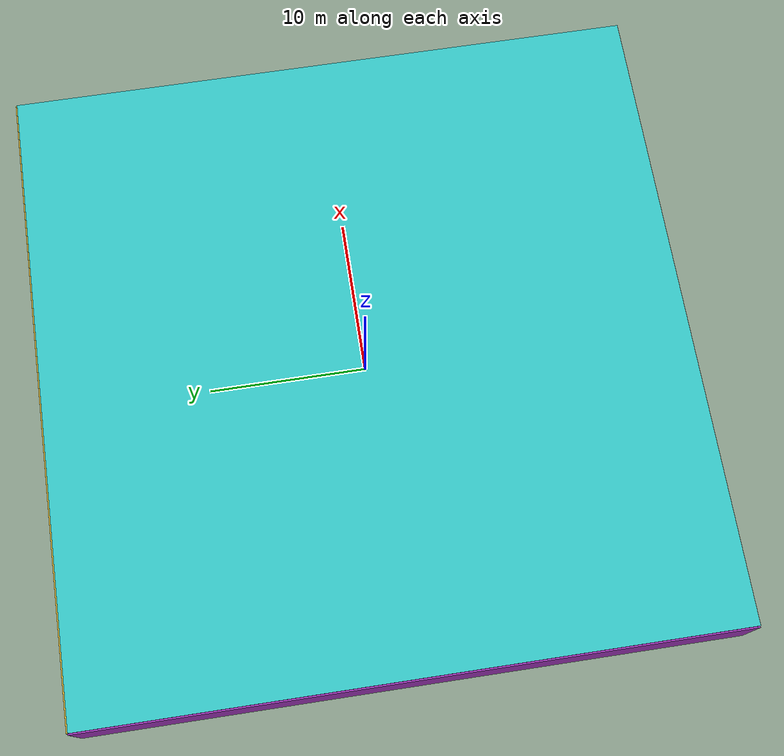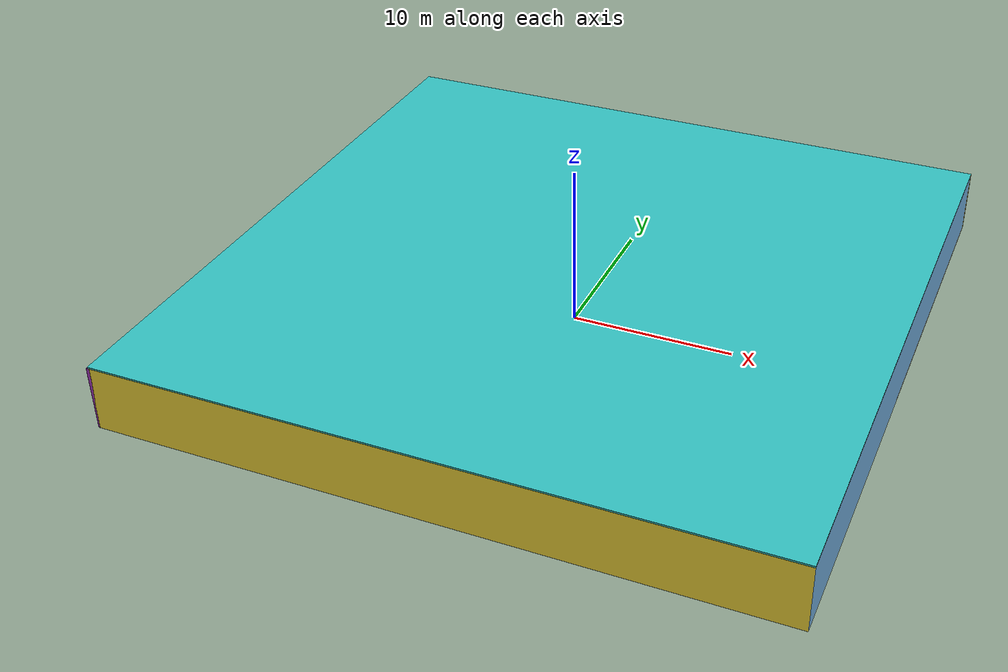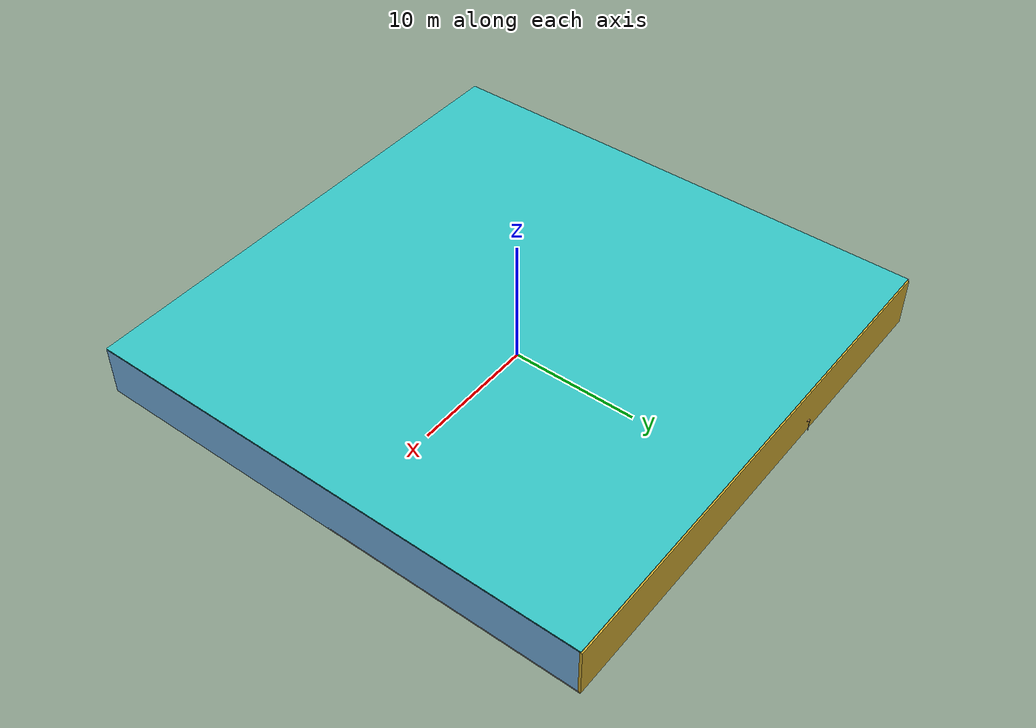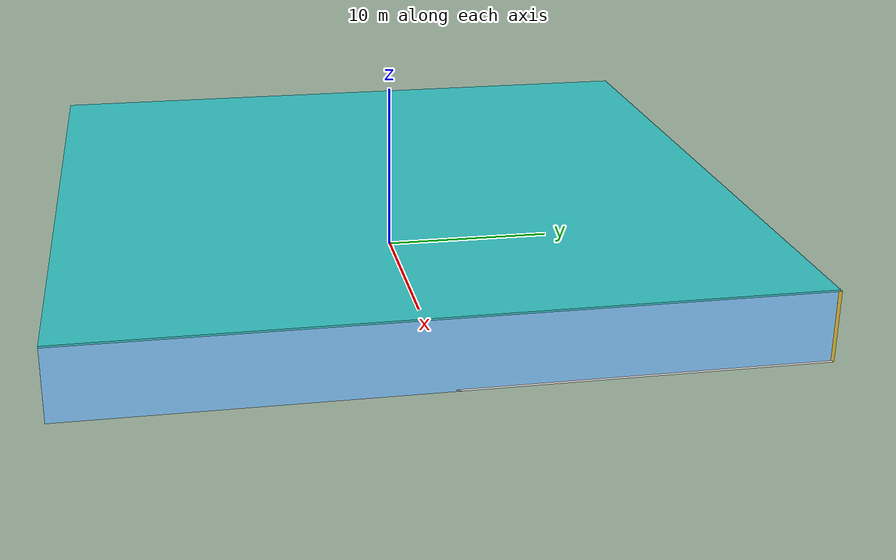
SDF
<sdf version="1.4">
 <world name="default">
  <physics type="ode">
   <max_step_size>0.001</max_step_size>
   <real_time_factor>1</real_time_factor>
   <real_time_update_rate>1000</real_time_update_rate>
   <gravity>0 0 -9.8</gravity>
  </physics>
  <scene><ambient>0.4 0.4 0.4 1</ambient><background>0.7 0.7 0.7 1</background><shadows>1</shadows></scene>
  <model name="Surrounding">
   <static>1</static>
   <link name="Ceiling">
    <collision name="Ceiling_Collision"><geometry><box><size>40 40 0.1</size></box></geometry></collision>
    <visual name="Ceiling_Visual">
     <geometry><box><size>40 40 0.1</size></box></geometry>
     <material>
      <script><uri>file://media/materials/scripts/gazebo.material</uri><name>Gazebo/Turquoise</name></script>
     </material>
    </visual>
    <pose>0 0 4.05 0 0 0</pose>
   </link>
   <link name="Wall_South">
    <collision name="Wall_South_Collision">
     <geometry><box><size>40 0 4</size></box></geometry>
     <pose>0 0 2 0 -0 0</pose>
    </collision>
    <visual name="Wall_South_Visual">
     <pose>0 0 2 0 -0 0</pose>
     <geometry><box><size>40 0 4</size></box></geometry>
     <material>
      <script><uri>file://media/materials/scripts/gazebo.material</uri><name>Gazebo/ZincYellow</name></script>
     </material>
    </visual>
    <velocity_decay><linear>0</linear><angular>0</angular></velocity_decay>
    <pose>0 -20 0 0 -0 0</pose>
   </link>
   <link name="Wall_East">
    <collision name="Wall_21_Collision">
     <geometry><box><size>40 0 4</size></box></geometry>
     <pose>0 0 2 0 -0 0</pose>
    </collision>
    <visual name="Wall_21_Visual">
     <pose>0 0 2 0 -0 0</pose>
     <geometry><box><size>40 0 4</size></box></geometry>
     <material>
      <script><uri>file://media/materials/scripts/gazebo.material</uri><name>Gazebo/SkyBlue</name></script>
     </material>
    </visual>
    <velocity_decay><linear>0</linear><angular>0</angular></velocity_decay>
    <pose>20 0 0 0 -0 1.5708</pose>
   </link>
   <link name="Wall_North">
    <collision name="Wall_22_Collision">
     <geometry><box><size>40 0.2 4</size></box></geometry>
     <pose>0 0 2 0 -0 0</pose>
    </collision>
    <visual name="Wall_22_Visual">
     <pose>0 0 2 0 -0 0</pose>
     <geometry><box><size>40 0.2 4</size></box></geometry>
     <material>
      <script><uri>file://media/materials/scripts/gazebo.material</uri><name>Gazebo/Gold</name></script>
     </material>
    </visual>
    <velocity_decay><linear>0</linear><angular>0</angular></velocity_decay>
    <pose>0 20 0 0 -0 0</pose>
   </link>
   <link name="Wall_West">
    <collision name="Wall_23_Collision">
     <geometry><box><size>40 0.2 4</size></box></geometry>
     <pose>0 0 2 0 -0 0</pose>
    </collision>
    <visual name="Wall_23_Visual">
     <pose>0 0 2 0 -0 0</pose>
     <geometry><box><size>40 0.2 4</size></box></geometry>
     <material>
      <script><uri>file://media/materials/scripts/gazebo.material</uri><name>Gazebo/PurpleGlow</name></script>
     </material>
    </visual>
    <velocity_decay><linear>0</linear><angular>0</angular></velocity_decay>
    <pose>-20 0 0 0 0 -1.5708</pose>
   </link>
   <link name="Ground_link">
    <collision name="collision">
     <pose>0 0 .05 0 -0 0</pose>
     <geometry><box><size>40 40 0.1</size></box></geometry>
    </collision>
    <visual name="visual">
     <pose>0 0 .05 0 -0 0</pose>
     <geometry><box><size>40 40 0.1</size></box></geometry>
     <material>
      <script><uri>file://media/materials/scripts/gazebo.material</uri><name>Gazebo/WhiteGlow</name></script>
     </material>
    </visual>
   </link>
   <static>1</static>
  </model>
  <spherical_coordinates>
   <surface_model>EARTH_WGS84</surface_model>
   <latitude_deg>0</latitude_deg>
   <longitude_deg>0</longitude_deg>
   <elevation>0</elevation>
   <heading_deg>0</heading_deg>
  </spherical_coordinates>
  <light name="lightball_0" type="diffuse">
   <diffuse>0.8 0.8 0.8 1</diffuse>
   <specular>0.2 0.2 0.2 1</specular>
   <attenuation>
    <range>100</range>
    <constant>0.7</constant>
    <linear>0.01</linear>
    <quadratic>0.001</quadratic>
   </attenuation>
   <direction>-0.5 0.1 -0.9</direction>
   <pose>-5.33123606226 -16.40698018 3.21283644227 0 0 0</pose>
  </light>
  <light name="lightball_1" type="diffuse">
   <diffuse>0.8 0.8 0.8 1</diffuse>
   <specular>0.2 0.2 0.2 1</specular>
   <attenuation>
    <range>100</range>
    <constant>0.7</constant>
    <linear>0.01</linear>
    <quadratic>0.001</quadratic>
   </attenuation>
   <direction>-0.5 0.1 -0.9</direction>
   <pose>-12.8009772392 18.8426619821 1.67318313758 0 0 0</pose>
  </light>
  <light name="lightball_2" type="diffuse">
   <diffuse>0.8 0.8 0.8 1</diffuse>
   <specular>0.2 0.2 0.2 1</specular>
   <attenuation>
    <range>100</range>
    <constant>0.7</constant>
    <linear>0.01</linear>
    <quadratic>0.001</quadratic>
   </attenuation>
   <direction>-0.5 0.1 -0.9</direction>
   <pose>-4.37134100918 11.432470729 1.60847884047 0 0 0</pose>
  </light>
  <light name="lightball_3" type="diffuse">
   <diffuse>0.8 0.8 0.8 1</diffuse>
   <specular>0.2 0.2 0.2 1</specular>
   <attenuation>
    <range>100</range>
    <constant>0.7</constant>
    <linear>0.01</linear>
    <quadratic>0.001</quadratic>
   </attenuation>
   <direction>-0.5 0.1 -0.9</direction>
   <pose>-8.36869134686 -4.20425229625 2.8426294247 0 0 0</pose>
  </light>
  <light name="lightball_4" type="diffuse">
   <diffuse>0.8 0.8 0.8 1</diffuse>
   <specular>0.2 0.2 0.2 1</specular>
   <attenuation>
    <range>100</range>
    <constant>0.7</constant>
    <linear>0.01</linear>
    <quadratic>0.001</quadratic>
   </attenuation>
   <direction>-0.5 0.1 -0.9</direction>
   <pose>3.56937079121 10.1982022142 2.94876924499 0 0 0</pose>
  </light>
  <light name="lightball_5" type="diffuse">
   <diffuse>0.8 0.8 0.8 1</diffuse>
   <specular>0.2 0.2 0.2 1</specular>
   <attenuation>
    <range>100</range>
    <constant>0.7</constant>
    <linear>0.01</linear>
    <quadratic>0.001</quadratic>
   </attenuation>
   <direction>-0.5 0.1 -0.9</direction>
   <pose>14.3211575627 12.1979481492 2.11511668942 0 0 0</pose>
  </light>
  <light name="lightball_6" type="diffuse">
   <diffuse>0.8 0.8 0.8 1</diffuse>
   <specular>0.2 0.2 0.2 1</specular>
   <attenuation>
    <range>100</range>
    <constant>0.7</constant>
    <linear>0.01</linear>
    <quadratic>0.001</quadratic>
   </attenuation>
   <direction>-0.5 0.1 -0.9</direction>
   <pose>-6.40391041481 8.31508236535 2.10623373809 0 0 0</pose>
  </light>
  <light name="lightball_7" type="diffuse">
   <diffuse>0.8 0.8 0.8 1</diffuse>
   <specular>0.2 0.2 0.2 1</specular>
   <attenuation>
    <range>100</range>
    <constant>0.7</constant>
    <linear>0.01</linear>
    <quadratic>0.001</quadratic>
   </attenuation>
   <direction>-0.5 0.1 -0.9</direction>
   <pose>5.66421759809 -3.84585635324 1.38787267379 0 0 0</pose>
  </light>
  <light name="lightball_8" type="diffuse">
   <diffuse>0.8 0.8 0.8 1</diffuse>
   <specular>0.2 0.2 0.2 1</specular>
   <attenuation>
    <range>100</range>
    <constant>0.7</constant>
    <linear>0.01</linear>
    <quadratic>0.001</quadratic>
   </attenuation>
   <direction>-0.5 0.1 -0.9</direction>
   <pose>-6.93170892869 -18.2062511633 2.08844723292 0 0 0</pose>
  </light>
  <light name="lightball_9" type="diffuse">
   <diffuse>0.8 0.8 0.8 1</diffuse>
   <specular>0.2 0.2 0.2 1</specular>
   <attenuation>
    <range>100</range>
    <constant>0.7</constant>
    <linear>0.01</linear>
    <quadratic>0.001</quadratic>
   </attenuation>
   <direction>-0.5 0.1 -0.9</direction>
   <pose>5.86540477858 -17.8577262518 2.17415824917 0 0 0</pose>
  </light>
  <light name="lightball_10" type="diffuse">
   <diffuse>0.8 0.8 0.8 1</diffuse>
   <specular>0.2 0.2 0.2 1</specular>
   <attenuation>
    <range>100</range>
    <constant>0.7</constant>
    <linear>0.01</linear>
    <quadratic>0.001</quadratic>
   </attenuation>
   <direction>-0.5 0.1 -0.9</direction>
   <pose>-9.69121794527 -12.7973002977 2.54765066377 0 0 0</pose>
  </light>
  <include>
   <uri>model://robocup_3Dsim_goal</uri>
   <pose>-12.1739133411 -5.04172875593 0 0 0 0.095062848834</pose>
  </include>
  <include><uri>model://table</uri><pose>-7.40330620312 -8.78810266799 0 0 0 1.15552132378</pose></include>
  <include>
   <uri>model://textured_shapes</uri>
   <pose>-8.25602235997 9.19021300575 0 0 0 1.73585972858</pose>
  </include>
  <include><uri>model://table</uri><pose>-6.36091638371 19.3968318577 0 0 0 1.02284509572</pose></include>
  <include>
   <uri>model://textured_shapes</uri>
   <pose>-1.66860392689 -14.1726266247 0 0 0 1.87924828343</pose>
  </include>
  <include>
   <uri>model://robocup_3Dsim_goal</uri>
   <pose>-2.04653993588 -3.10298489154 0 0 0 2.17142305993</pose>
  </include>
  <include><uri>model://cabinet</uri><pose>-2.43815178915 8.6847514721 0 0 0 2.47528368881</pose></include>
  <include><uri>model://table</uri><pose>-2.07418793929 19.0419375706 0 0 0 2.37125208137</pose></include>
  <include>
   <uri>model://textured_shapes</uri>
   <pose>-0.302928063328 -2.90978547696 0 0 0 0.812932105122</pose>
  </include>
  <include>
   <uri>model://robocup_3Dsim_goal</uri>
   <pose>4.14749785217 -15.3542775043 0 0 0 1.5556780792</pose>
  </include>
  <include><uri>model://table</uri><pose>4.47252165119 3.11507513608 0 0 0 1.56276742042</pose></include>
  <include>
   <uri>model://robocup_3Dsim_goal</uri>
   <pose>3.73240435587 17.9622726881 0 0 0 2.08089916712</pose>
  </include>
  <include><uri>model://table</uri><pose>5.74859904969 13.4085834957 0 0 0 0.0870335659514</pose></include>
  <include>
   <uri>model://robocup_3Dsim_goal</uri>
   <pose>17.8653176221 -9.58554412927 0 0 0 2.018756553</pose>
  </include>
 </world>
</sdf>

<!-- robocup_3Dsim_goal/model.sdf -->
<sdf version="1.5">
  <model name="robocup_3d_goal">
    <static>true</static>
    <link name="left_post">
      <pose>0 1.05 0.45 0 0 0</pose>
      <collision name="collision">
        <geometry>
          <cylinder>
            <radius>0.05</radius>
            <length>0.9</length>
          </cylinder>
        </geometry>
      </collision>
      <visual name="visual">
        <geometry>
          <cylinder>
            <radius>0.05</radius>
            <length>0.9</length>
          </cylinder>
        </geometry>
        <material>
          <script>
            <uri>file://media/materials/scripts/gazebo.material</uri>
            <name>Gazebo/ZincYellow</name>
          </script>
        </material>
      </visual>
    </link>
    <link name="left_support_horiz_lower">
      <pose>0.30 1.05 0.01 0 0 0</pose>
      <collision name="collision">
        <geometry>
          <box>
            <size>0.50 0.02 0.02</size>
          </box>
        </geometry>
      </collision>
      <visual name="visual">
        <geometry>
          <box>
            <size>0.50 0.02 0.02</size>
          </box>
        </geometry>
        <material>
          <script>
            <uri>file://media/materials/scripts/gazebo.material</uri>
            <name>Gazebo/White</name>
          </script>
        </material>
      </visual>
    </link>
    <link name="left_support_horiz_upper">
      <pose>0.30 1.05 0.79 0 0 0</pose>
      <collision name="collision">
        <geometry>
          <box>
            <size>0.50 0.02 0.02</size>
          </box>
        </geometry>
      </collision>
      <visual name="visual">
        <geometry>
          <box>
            <size>0.50 0.02 0.02</size>
          </box>
        </geometry>
        <material>
          <script>
            <uri>file://media/materials/scripts/gazebo.material</uri>
            <name>Gazebo/White</name>
          </script>
        </material>
      </visual>
    </link>
    <link name="left_support_vertical">
      <pose>0.56 1.05 0.4 0 1.5708 0</pose>
      <collision name="collision">
        <geometry>
          <box>
            <size>0.80 0.02 0.02</size>
          </box>
        </geometry>
      </collision>
      <visual name="visual">
        <geometry>
          <box>
            <size>0.80 0.02 0.02</size>
          </box>
        </geometry>
        <material>
          <script>
            <uri>file://media/materials/scripts/gazebo.material</uri>
            <name>Gazebo/White</name>
          </script>
        </material>
      </visual>
    </link>
    <link name="right_support_horiz_lower">
      <pose>0.30 -1.05 0.01 0 0 0</pose>
      <collision name="collision">
        <geometry>
          <box>
            <size>0.50 0.02 0.02</size>
          </box>
        </geometry>
      </collision>
      <visual name="visual">
        <geometry>
          <box>
            <size>0.50 0.02 0.02</size>
          </box>
        </geometry>
        <material>
          <script>
            <uri>file://media/materials/scripts/gazebo.material</uri>
            <name>Gazebo/White</name>
          </script>
        </material>
      </visual>
    </link>
    <link name="right_support_horiz_upper">
      <pose>0.30 -1.05 0.79 0 0 0</pose>
      <collision name="collision">
        <geometry>
          <box>
            <size>0.50 0.02 0.02</size>
          </box>
        </geometry>
      </collision>
      <visual name="visual">
        <geometry>
          <box>
            <size>0.50 0.02 0.02</size>
          </box>
        </geometry>
        <material>
          <script>
            <uri>file://media/materials/scripts/gazebo.material</uri>
            <name>Gazebo/White</name>
          </script>
        </material>
      </visual>
    </link>
    <link name="right_support_vertical">
      <pose>0.56 -1.05 0.4 0 1.5708 0</pose>
      <collision name="collision">
        <geometry>
          <box>
            <size>0.80 0.02 0.02</size>
          </box>
        </geometry>
      </collision>
      <visual name="visual">
        <geometry>
          <box>
            <size>0.80 0.02 0.02</size>
          </box>
        </geometry>
        <material>
          <script>
            <uri>file://media/materials/scripts/gazebo.material</uri>
            <name>Gazebo/White</name>
          </script>
        </material>
      </visual>
    </link>
    <link name="center_support_horiz_lower">
      <pose>0.56 0 0.01 0 1.5708 0</pose>
      <collision name="collision">
        <geometry>
          <box>
            <size>0.02 2.08 0.02</size>
          </box>
        </geometry>
      </collision>
      <visual name="visual">
        <geometry>
          <box>
            <size>0.02 2.08 0.02</size>
          </box>
        </geometry>
        <material>
          <script>
            <uri>file://media/materials/scripts/gazebo.material</uri>
            <name>Gazebo/White</name>
          </script>
        </material>
      </visual>
    </link>
    <link name="center_support_horiz_upper">
      <pose>0.56 0 0.79 0 1.5708 0</pose>
      <collision name="collision">
        <geometry>
          <box>
            <size>0.02 2.08 0.02</size>
          </box>
        </geometry>
      </collision>
      <visual name="visual">
        <geometry>
          <box>
            <size>0.02 2.08 0.02</size>
          </box>
        </geometry>
        <material>
          <script>
            <uri>file://media/materials/scripts/gazebo.material</uri>
            <name>Gazebo/White</name>
          </script>
        </material>
      </visual>
    </link>
    <link name="right_post">
      <pose>0 -1.05 0.45 0 0 0</pose>
      <collision name="collision">
        <geometry>
          <cylinder>
            <radius>0.05</radius>
            <length>0.9</length>
          </cylinder>
        </geometry>
      </collision>
      <visual name="visual">
        <geometry>
          <cylinder>
            <radius>0.05</radius>
            <length>0.9</length>
          </cylinder>
        </geometry>
        <material>
          <script>
            <uri>file://media/materials/scripts/gazebo.material</uri>
            <name>Gazebo/ZincYellow</name>
          </script>
        </material>
      </visual>
    </link>
    <link name="crossbar">
      <pose>0 0 0.85 1.57 1.57 0</pose>
      <collision name="collision">
        <geometry>
          <cylinder>
            <radius>0.05</radius>
            <length>2.0</length>
          </cylinder>
        </geometry>
      </collision>
      <visual name="visual">
        <geometry>
          <cylinder>
            <radius>0.05</radius>
            <length>2.0</length>
          </cylinder>
        </geometry>
        <material>
          <script>
            <uri>file://media/materials/scripts/gazebo.material</uri>
            <name>Gazebo/ZincYellow</name>
          </script>
        </material>
      </visual>
    </link>
    <link name="center_net">
      <pose>0.56 0 0.40 0 0 0</pose>
      <collision name="collision">
        <geometry>
          <box>
            <size>0.01 2.1 0.80</size>
          </box>
        </geometry>
      </collision>
      <visual name="visual">
        <geometry>
          <box>
            <size>0.01 2.1 0.80</size>
          </box>
        </geometry>
        <material>
          <script>
            <uri>model://../model_source/models/robocup09_spl_field/materials/scripts/</uri>
            <uri>model://../model_source/models/robocup09_spl_field/materials/textures/</uri>
            <name>RoboCup/Net</name>
          </script>
        </material>
      </visual>
    </link>
    <link name="left_net">
      <pose>0.30 1.05 0.40 0 0 0</pose>
      <collision name="collision">
        <geometry>
          <box>
            <size>0.50 0.01 0.76</size>
          </box>
        </geometry>
      </collision>
      <visual name="visual">
        <geometry>
          <box>
            <size>0.50 0.01 0.76</size>
          </box>
        </geometry>
        <material>
          <script>
            <uri>model://../model_source/models/robocup09_spl_field/materials/scripts/</uri>
            <uri>model://../model_source/models/robocup09_spl_field/materials/textures/</uri>
            <name>RoboCup/Net</name>
          </script>
        </material>
      </visual>
    </link>
    <link name="right_net">
      <pose>0.30 -1.05 0.40 0 0 0</pose>
      <collision name="collision">
        <geometry>
          <box>
            <size>0.50 0.01 0.76</size>
          </box>
        </geometry>
      </collision>
      <visual name="visual">
        <geometry>
          <box>
            <size>0.50 0.01 0.76</size>
          </box>
        </geometry>
        <material>
          <script>
            <uri>model://../model_source/models/robocup09_spl_field/materials/scripts/</uri>
            <uri>model://../model_source/models/robocup09_spl_field/materials/textures/</uri>
            <name>RoboCup/Net</name>
          </script>
        </material>
      </visual>
    </link>
  </model>
</sdf>

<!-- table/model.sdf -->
<sdf version="1.5">
  <model name="table">
    <static>true</static>
    <link name="link">
      <collision name="surface">
        <pose>0 0 1.0 0 0 0</pose>
        <geometry>
          <box>
            <size>1.5 0.8 0.03</size>
          </box>
        </geometry>
        <surface>
          <friction>
            <ode>
              <mu>0.6</mu>
              <mu2>0.6</mu2>
            </ode>
          </friction>
        </surface>
      </collision>
      <visual name="visual1">
        <pose>0 0 1.0 0 0 0</pose>
        <geometry>
          <box>
            <size>1.5 0.8 0.03</size>
          </box>
        </geometry>
        <material>
          <script>
            <uri>model://media/materials/scripts/gazebo.material</uri>
            <name>Gazebo/Wood</name>
          </script>
        </material>
      </visual>
      <collision name="front_left_leg">
        <pose>0.68 0.38 0.5 0 0 0</pose>
        <geometry>
          <cylinder>
            <radius>0.02</radius>
            <length>1.0</length>
          </cylinder>
        </geometry>
      </collision>
      <visual name="front_left_leg">
        <pose>0.68 0.38 0.5 0 0 0</pose>
        <geometry>
          <cylinder>
            <radius>0.02</radius>
            <length>1.0</length>
          </cylinder>
        </geometry>
        <material>
          <script>
            <uri>model://media/materials/scripts/gazebo.material</uri>
            <name>Gazebo/Grey</name>
          </script>
        </material>
      </visual>
      <collision name="front_right_leg">
        <pose>0.68 -0.38 0.5 0 0 0</pose>
        <geometry>
          <cylinder>
            <radius>0.02</radius>
            <length>1.0</length>
          </cylinder>
        </geometry>
      </collision>
      <visual name="front_right_leg">
        <pose>0.68 -0.38 0.5 0 0 0</pose>
        <geometry>
          <cylinder>
            <radius>0.02</radius>
            <length>1.0</length>
          </cylinder>
        </geometry>
        <material>
          <script>
            <uri>model://media/materials/scripts/gazebo.material</uri>
            <name>Gazebo/Grey</name>
          </script>
        </material>
      </visual>
      <collision name="back_right_leg">
        <pose>-0.68 -0.38 0.5 0 0 0</pose>
        <geometry>
          <cylinder>
            <radius>0.02</radius>
            <length>1.0</length>
          </cylinder>
        </geometry>
      </collision>
      <visual name="back_right_leg">
        <pose>-0.68 -0.38 0.5 0 0 0</pose>
        <geometry>
          <cylinder>
            <radius>0.02</radius>
            <length>1.0</length>
          </cylinder>
        </geometry>
        <material>
          <script>
            <uri>model://media/materials/scripts/gazebo.material</uri>
            <name>Gazebo/Grey</name>
          </script>
        </material>
      </visual>
      <collision name="back_left_leg">
        <pose>-0.68 0.38 0.5 0 0 0</pose>
        <geometry>
          <cylinder>
            <radius>0.02</radius>
            <length>1.0</length>
          </cylinder>
        </geometry>
      </collision>
      <visual name="back_left_leg">
        <pose>-0.68 0.38 0.5 0 0 0</pose>
        <geometry>
          <cylinder>
            <radius>0.02</radius>
            <length>1.0</length>
          </cylinder>
        </geometry>
        <material>
          <script>
            <uri>model://media/materials/scripts/gazebo.material</uri>
            <name>Gazebo/Grey</name>
          </script>
        </material>
      </visual>
    </link>
  </model>
</sdf>

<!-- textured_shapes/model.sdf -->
<sdf version="1.6">
  <model name="textured_shapes">
    <pose>0 0 0.5 0 0 0</pose>
    <link name="box">
      <pose>0 -1.5 0 0 0 0</pose>
      <collision name="collision">
        <geometry>
          <box>
            <size>1 1 1</size>
          </box>
        </geometry>
      </collision>
      <visual name="visual">
        <geometry>
          <box>
            <size>1 1 1</size>
          </box>
        </geometry>
        <material>
          <script>
            <uri>model://../model_source/models/textured_shapes/materials/scripts</uri>
            <uri>model://../model_source/models/textured_shapes/materials/textures</uri>
            <name>TexturedShape/Squares</name>
          </script>
        </material>
      </visual>
    </link>
    <link name="sphere">
      <collision name="collision">
        <geometry>
          <sphere>
            <radius>0.5</radius>
          </sphere>
        </geometry>
      </collision>
      <visual name="visual">
        <geometry>
          <sphere>
            <radius>0.5</radius>
          </sphere>
        </geometry>
        <material>
          <script>
            <uri>model://../model_source/models/textured_shapes/materials/scripts</uri>
            <uri>model://../model_source/models/textured_shapes/materials/textures</uri>
            <name>TexturedShape/Squares</name>
          </script>
        </material>
      </visual>
    </link>
    <link name="cylinder">
      <pose>0 1.5 0 0 0 0</pose>
      <collision name="collision">
        <geometry>
          <cylinder>
            <radius>0.5</radius>
            <length>1</length>
          </cylinder>
        </geometry>
      </collision>
      <visual name="visual">
        <geometry>
          <cylinder>
            <radius>0.5</radius>
            <length>1</length>
          </cylinder>
        </geometry>
        <material>
          <script>
            <uri>model://../model_source/models/textured_shapes/materials/scripts</uri>
            <uri>model://../model_source/models/textured_shapes/materials/textures</uri>
            <name>TexturedShape/Squares</name>
          </script>
        </material>
      </visual>
    </link>
  </model>
</sdf>

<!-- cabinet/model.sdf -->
<sdf version="1.5">
  <model name="cabinet">
    <static>true</static>
    <link name="cabinet_bottom_plate">
      <inertial>
        <pose>0 0 -1 0 0 0</pose>
        <inertia>
          <ixx>2.050000</ixx>
          <ixy>0</ixy>
          <ixz>0</ixz>
          <iyy>2.050000</iyy>
          <iyz>0</iyz>
          <izz>2.050000</izz>
        </inertia>
        <mass>25.000000</mass>
      </inertial>
      <collision name="cabinet_bottom_plate_geom">
        <pose>0 0 0.010000 0 0 0</pose>
        <geometry>
          <box>
            <size>0.450000 0.450000 0.020000</size>
          </box>
        </geometry>
      </collision>
      <visual name="cabinet_bottom_plate_geom_visual">
        <pose>0 0 0.010000 0 0 0</pose>
        <geometry>
          <box>
            <size>0.450000 0.450000 0.020000</size>
          </box>
        </geometry>
        <material>
          <script>
            <uri>model://media/materials/scripts/gazebo.material</uri>
            <name>Gazebo/Wood</name>
          </script>
        </material>
      </visual>
      <collision name="cabinet_bottom_plate_geom_cabinet_back_plate">
        <pose>0.235000 0 0.510000 0 0 0</pose>
        <geometry>
          <box>
            <size>0.020000 0.450000 1.020000</size>
          </box>
        </geometry>
      </collision>
      <visual name="cabinet_bottom_plate_geom_cabinet_back_plate_visual">
        <pose>0.235000 0 0.510000 0 0 0</pose>
        <geometry>
          <box>
            <size>0.020000 0.450000 1.020000</size>
          </box>
        </geometry>
        <material>
          <script>
            <uri>model://media/materials/scripts/gazebo.material</uri>
            <name>Gazebo/Wood</name>
          </script>
        </material>
      </visual>
      <collision name="cabinet_bottom_plate_geom_cabinet_left_plate">
        <pose>0 0.235000 0.510000 0 0 0</pose>
        <geometry>
          <box>
            <size>0.450000 0.020000 1.020000</size>
          </box>
        </geometry>
      </collision>
      <visual name="cabinet_bottom_plate_geom_cabinet_left_plate_visual">
        <pose>0 0.235000 0.510000 0 0 0</pose>
        <geometry>
          <box>
            <size>0.450000 0.020000 1.020000</size>
          </box>
        </geometry>
        <material>
          <script>
            <uri>model://media/materials/scripts/gazebo.material</uri>
            <name>Gazebo/Wood</name>
          </script>
        </material>
      </visual>
      <collision name="cabinet_bottom_plate_geom_cabinet_middle_plate">
        <pose>0 0 0.510000 0 0 0</pose>
        <geometry>
          <box>
            <size>0.450000 0.450000 0.020000</size>
          </box>
        </geometry>
      </collision>
      <visual name="cabinet_bottom_plate_geom_cabinet_middle_plate_visual">
        <pose>0 0 0.510000 0 0 0</pose>
        <geometry>
          <box>
            <size>0.450000 0.450000 0.020000</size>
          </box>
        </geometry>
        <material>
          <script>
            <uri>model://media/materials/scripts/gazebo.material</uri>
            <name>Gazebo/Wood</name>
          </script>
        </material>
      </visual>
      <collision name="cabinet_bottom_plate_geom_cabinet_right_plate">
        <pose>0 -0.235000 0.510000 0 0 0</pose>
        <geometry>
          <box>
            <size>0.450000 0.020000 1.020000</size>
          </box>
        </geometry>
      </collision>
      <visual name="cabinet_bottom_plate_geom_cabinet_right_plate_visual">
        <pose>0 -0.235000 0.510000 0 0 0</pose>
        <geometry>
          <box>
            <size>0.450000 0.020000 1.020000</size>
          </box>
        </geometry>
        <material>
          <script>
            <uri>model://media/materials/scripts/gazebo.material</uri>
            <name>Gazebo/Wood</name>
          </script>
        </material>
      </visual>
      <collision name="cabinet_bottom_plate_geom_cabinet_top_plate">
        <pose>0 0 1.010000 0 0 0</pose>
        <geometry>
          <box>
            <size>0.450000 0.450000 0.020000</size>
          </box>
        </geometry>
      </collision>
      <visual name="cabinet_bottom_plate_geom_cabinet_top_plate_visual">
        <pose>0 0 1.010000 0 0 0</pose>
        <geometry>
          <box>
            <size>0.450000 0.450000 0.020000</size>
          </box>
        </geometry>
        <material>
          <script>
            <uri>model://media/materials/scripts/gazebo.material</uri>
            <name>Gazebo/Wood</name>
          </script>
        </material>
      </visual>
    </link>
  </model>
</sdf>
